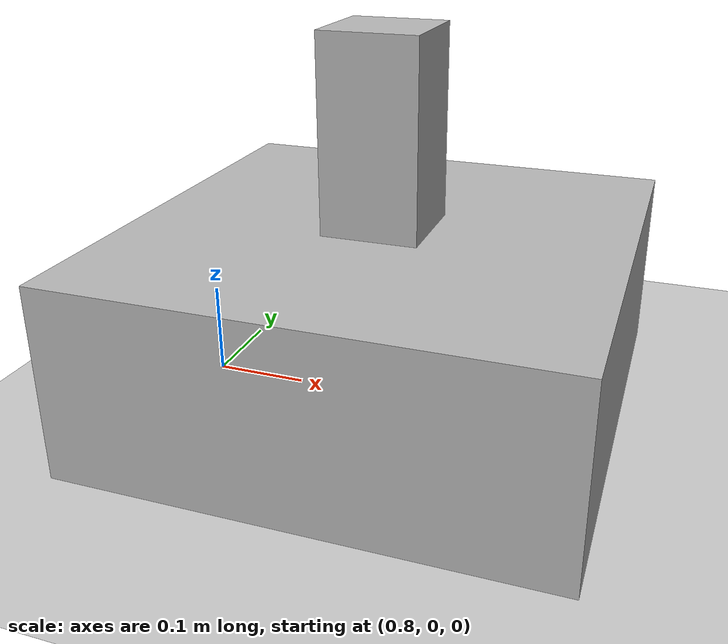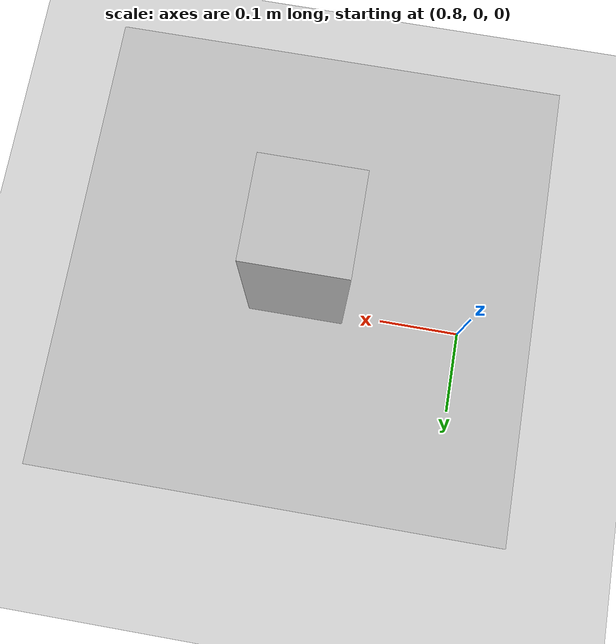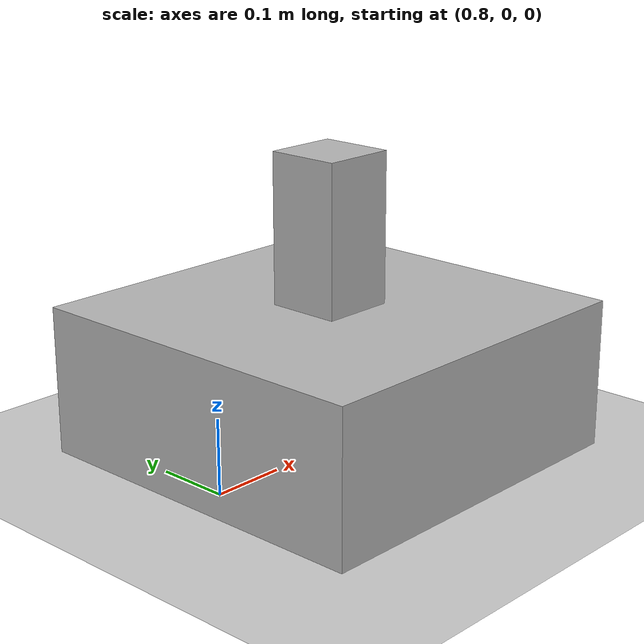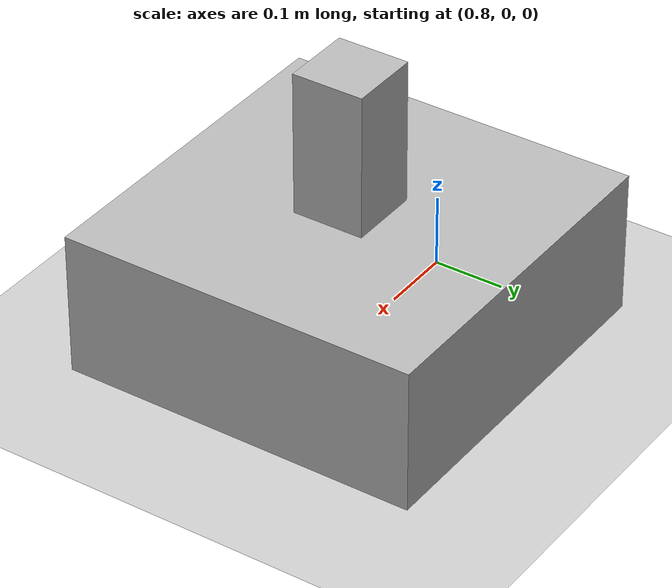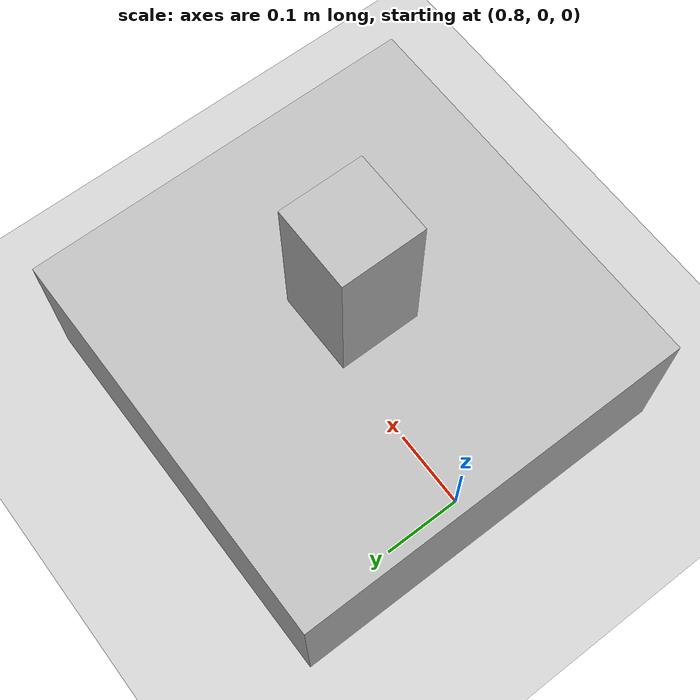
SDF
<?xml version="1.0" ?>
<sdf version="1.5">
  <world name="default">
    <include>
      <uri>model://sun</uri>
    </include>
    <include>
      <uri>model://ground_plane</uri>
    </include>
    <include>
      <uri>model://robot1</uri>
      <pose>1 0 0 0 0 0</pose>
    </include>
  </world>
</sdf>

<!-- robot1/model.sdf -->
<sdf version="1.4">
<model name="robot1">
    <link name="link">
      <pose>0 0 0.1 0 0 0</pose>
      <collision name="collision">
        <geometry>
          <box>
            <size>0.5 0.5 0.2</size>
          </box>
        </geometry>
      </collision>
      <visual name="visual">
        <geometry>
          <box>
            <size>0.5 0.5 0.2</size>
          </box>
        </geometry>
      </visual>
    </link>

    <link name="head_link">
      <pose>0 0 0.3 0 0 0</pose>
      <inertial>
        <mass>0.2</mass>
        <inertia>
          <ixx>0.0083</ixx>
          <ixy>0.0</ixy>
          <ixz>0.0</ixz>
          <iyy>0.0083</iyy>
          <iyz>0.0</iyz>
          <izz>0.0083</izz>
        </inertia>
      </inertial>
      <collision name="collision">
        <geometry>
          <box>
            <size>0.1 0.1 0.2</size>
          </box>
        </geometry>
      </collision>
      <visual name="visual">
        <geometry>
          <box>
            <size>0.1 0.1 0.2</size>
          </box>
        </geometry>
      </visual>
      <sensor type="ray" name="ray0">
        <pose>0 0 0 0 0 0</pose>
        <visualize>false</visualize>
        <update_rate>10</update_rate>
        <ray>
          <scan>
            <horizontal>
              <samples>400</samples>
              <resolution>1</resolution>
              <min_angle>-1.57</min_angle>
              <max_angle>1.57</max_angle>
            </horizontal>
          </scan>
          <range>
            <min>0.10</min>
            <max>20.0</max>
            <resolution>0.01</resolution>
          </range>
          <noise>
            <type>gaussian</type>
            <mean>0.0</mean>
            <stddev>0.01</stddev>
          </noise>
        </ray>
        <plugin name="gazebo_ros_lidar_controller" filename="libgazebo_ros_laser.so">
          <topicName>/laser/scan</topicName>
          <frameName>laser_link</frameName>
        </plugin>
      </sensor>
    </link>

    <joint name='head_joint' type='fixed'>
      <parent>link</parent>
      <child>head_link</child>
      <pose>0 0 0.5 0 0 0</pose>
    </joint>

    <plugin name="object_controller" filename="libgazebo_ros_planar_move.so">
      <commandTopic>cmd_vel</commandTopic>
      <odometryTopic>odom</odometryTopic>
      <odometryFrame>odom</odometryFrame>
      <odometryRate>20.0</odometryRate>
      <robotBaseFrame>base_link</robotBaseFrame>
    </plugin>

    <plugin name="ground_truth" filename="libgazebo_ros_p3d.so">
      <frameName>map</frameName>
      <bodyName>link</bodyName>
      <topicName>true_odom</topicName>
      <updateRate>30.0</updateRate>
    </plugin>
  </model>
</sdf>
